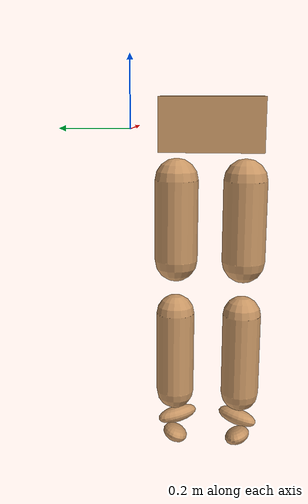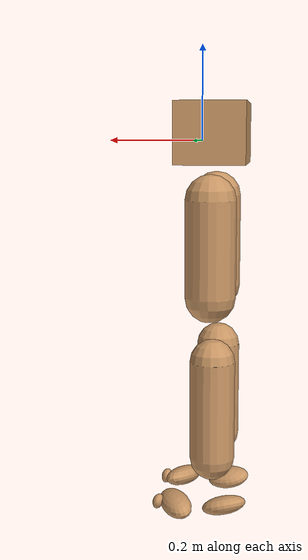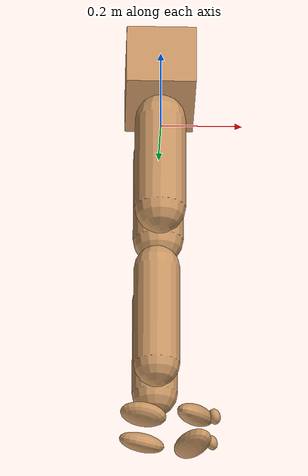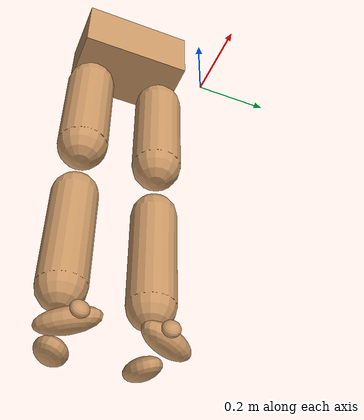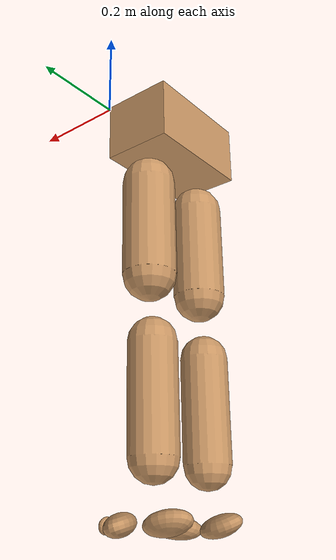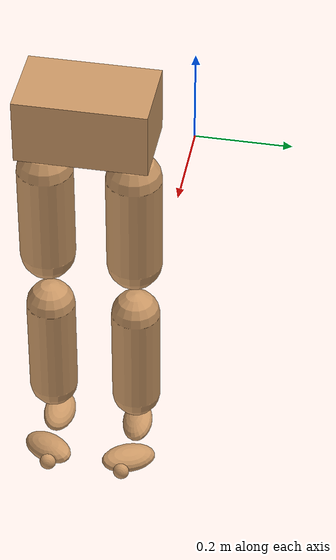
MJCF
<mujoco model="humanoid">
  <compiler coordinate="local" />
  <default>
    <joint damping="0.0" armature="0.01" stiffness="0.0" limited="true" />
    <geom conaffinity="1" condim="3" contype="7" margin="0.001" rgba="0.8 0.6 .4 1" />
  </default>
  <asset>
    <texture type="skybox" builtin="gradient" rgb1=".4 .5 .6" rgb2="0 0 0" width="100" height="100" />
    <texture builtin="flat" height="1278" mark="cross" markrgb="1 1 1" name="texgeom" random="0.01" rgb1="0.8 0.6 0.4" rgb2="0.8 0.6 0.4" type="cube" width="127" />
    <texture builtin="checker" height="100" name="texplane" rgb1="0 0 0" rgb2="0.8 0.8 0.8" type="2d" width="100" />
    <material name="MatPlane" reflectance="0.5" shininess="1" specular="1" texrepeat="60 60" texture="texplane" />
    <material name="geom" texture="texgeom" texuniform="true" />
  </asset>
  <worldbody>
    <light cutoff="100" diffuse="1 1 1" dir="-0 0 -1.3" directional="true" exponent="1" pos="0.000000 0.000000 1.300000" specular=".1 .1 .1" />
    <body name="Pelvis" pos="-0.001800 -0.223300 0.028200">
      <freejoint name="Pelvis" />
      <geom type="box" pos="-0.005500 -0.000000 -0.012100" size="0.083000 0.140000 0.072200" quat="1.0000 0.0000 0.0000 0.0000" density="1164.978473" />
      <body name="L_Hip" pos="-0.006550 0.095000 -0.091000">
        <joint name="L_Hip_x" type="hinge" pos="0.000000 0.000000 0.000000" axis="1 0 0" stiffness="250" damping="25" armature="0.02" range="-20.0000 45.0000" />
        <joint name="L_Hip_y" type="hinge" pos="0.000000 0.000000 0.000000" axis="0 1 0" stiffness="250" damping="25" armature="0.02" range="-30.0000 120.0000" />
        <joint name="L_Hip_z" type="hinge" pos="0.000000 0.000000 0.000000" axis="0 0 1" stiffness="250" damping="25" armature="0.02" range="-45.0000 45.0000" />
        <geom type="capsule" contype="1" conaffinity="1" density="4579.661072" fromto="0.000000 0.000000 -0.075000 0.000000 0.000000 -0.303000" size="0.060600" />
        <body name="L_Knee" pos="-0.006700 0.000000 -0.378900">
          <joint name="L_Knee_x" type="hinge" pos="0.000000 0.000000 0.000000" axis="1 0 0" stiffness="200" damping="20" armature="0.02" range="-10.0000 10.0000" />
          <joint name="L_Knee_y" type="hinge" pos="0.000000 0.000000 0.000000" axis="0 1 0" stiffness="200" damping="20" armature="0.02" range="-10.0000 150.0000" />
          <joint name="L_Knee_z" type="hinge" pos="0.000000 0.000000 0.000000" axis="0 0 1" stiffness="200" damping="20" armature="0.02" range="-15.0000 15.0000" />
          <geom type="capsule" contype="1" conaffinity="1" density="1624.381910" fromto="0.000000 0.000000 -0.079700 0.000000 0.000000 -0.318700" size="0.054100" />
          <body name="L_Ankle" pos="0.000000 0.000000 -0.398200">
            <joint name="L_Ankle_x" type="hinge" pos="0.000000 0.000000 0.000000" axis="1 0 0" stiffness="150" damping="15" armature="0.02" range="-10.0000 10.0000" />
            <joint name="L_Ankle_y" type="hinge" pos="0.000000 0.000000 0.000000" axis="0 1 0" stiffness="150" damping="15" armature="0.02" range="-45.0000 20.0000" />
            <joint name="L_Ankle_z" type="hinge" pos="0.000000 0.000000 0.000000" axis="0 0 1" stiffness="150" damping="15" armature="0.02" range="-10.0000 10.0000" />
            <geom type="ellipsoid" pos="-0.030100 -0.003700 -0.045000" size="0.054000 0.035400 0.022600" quat="0.9795 0.1640 0.0996 0.0505" density="1954.530354" />
            <geom type="ellipsoid" pos="0.089000 -0.002000 -0.045600" size="0.033800 0.063200 0.024000" quat="0.9572 -0.0878 0.1218 0.2470" density="1954.530354" />
            <body name="L_Toe" pos="0.123300 0.000000 -0.055000">
              <joint name="L_Toe_x" type="hinge" pos="0.000000 0.000000 0.000000" axis="1 0 0" stiffness="75" damping="8" armature="0.02" range="-10.0000 10.0000" />
              <joint name="L_Toe_y" type="hinge" pos="0.000000 0.000000 0.000000" axis="0 1 0" stiffness="75" damping="8" armature="0.02" range="-20.0000 20.0000" />
              <joint name="L_Toe_z" type="hinge" pos="0.000000 0.000000 0.000000" axis="0 0 1" stiffness="75" damping="8" armature="0.02" range="-5.0000 5.0000" />
              <geom type="ellipsoid" pos="0.010200 -0.010800 0.009400" size="0.018200 0.018600 0.013200" quat="0.7600 0.2624 0.5268 0.2759" density="9913.899509" />
            </body>
          </body>
        </body>
      </body>
      <body name="R_Hip" pos="-0.006550 -0.095000 -0.091000">
        <joint name="R_Hip_x" type="hinge" pos="0.000000 0.000000 0.000000" axis="1 0 0" stiffness="250" damping="25" armature="0.02" range="-20.0000 45.0000" />
        <joint name="R_Hip_y" type="hinge" pos="0.000000 0.000000 0.000000" axis="0 1 0" stiffness="250" damping="25" armature="0.02" range="-30.0000 120.0000" />
        <joint name="R_Hip_z" type="hinge" pos="0.000000 0.000000 0.000000" axis="0 0 1" stiffness="250" damping="25" armature="0.02" range="-15.0000 15.0000" />
        <geom type="capsule" contype="1" conaffinity="1" density="4579.661072" fromto="0.000000 0.000000 -0.075000 0.000000 0.000000 -0.303000" size="0.060600" />
        <body name="R_Knee" pos="-0.006700 0.000000 -0.378900">
          <joint name="R_Knee_x" type="hinge" pos="0.000000 0.000000 0.000000" axis="1 0 0" stiffness="200" damping="20" armature="0.02" range="-10.0000 10.0000" />
          <joint name="R_Knee_y" type="hinge" pos="0.000000 0.000000 0.000000" axis="0 1 0" stiffness="200" damping="20" armature="0.02" range="-10.0000 150.0000" />
          <joint name="R_Knee_z" type="hinge" pos="0.000000 0.000000 0.000000" axis="0 0 1" stiffness="200" damping="20" armature="0.02" range="-15.0000 15.0000" />
          <geom type="capsule" contype="1" conaffinity="1" density="1624.381910" fromto="0.000000 0.000000 -0.079700 0.000000 0.000000 -0.318700" size="0.054100" />
          <body name="R_Ankle" pos="0.000000 0.000000 -0.398200">
            <joint name="R_Ankle_x" type="hinge" pos="0.000000 0.000000 0.000000" axis="1 0 0" stiffness="150" damping="15" armature="0.02" range="-25.0000 25.0000" />
            <joint name="R_Ankle_y" type="hinge" pos="0.000000 0.000000 0.000000" axis="0 1 0" stiffness="150" damping="15" armature="0.02" range="-45.0000 20.0000" />
            <joint name="R_Ankle_z" type="hinge" pos="0.000000 0.000000 0.000000" axis="0 0 1" stiffness="150" damping="15" armature="0.02" range="-10.0000 10.0000" />
            <geom type="ellipsoid" pos="-0.030100 0.003700 -0.045000" size="0.054000 0.035400 0.022600" quat="0.9795 -0.1640 0.0996 -0.0505" density="1954.530354" />
            <geom type="ellipsoid" pos="0.089000 0.002000 -0.045600" size="0.033800 0.063200 0.024000" quat="0.9572 0.0878 0.1218 -0.2470" density="1954.530354" />
            <body name="R_Toe" pos="0.123300 0.000000 -0.055000">
              <joint name="R_Toe_x" type="hinge" pos="0.000000 0.000000 0.000000" axis="1 0 0" stiffness="75" damping="8" armature="0.02" range="-10.0000 10.0000" />
              <joint name="R_Toe_y" type="hinge" pos="0.000000 0.000000 0.000000" axis="0 1 0" stiffness="75" damping="8" armature="0.02" range="-20.0000 20.0000" />
              <joint name="R_Toe_z" type="hinge" pos="0.000000 0.000000 0.000000" axis="0 0 1" stiffness="75" damping="8" armature="0.02" range="-5.0000 5.0000" />
              <geom type="ellipsoid" pos="0.010200 0.010800 0.009400" size="0.018200 0.018600 0.013200" quat="0.7600 -0.2624 0.5268 -0.2759" density="9913.899509" />
            </body>
          </body>
        </body>
      </body>
    </body>
  </worldbody>
  <actuator>
    <motor name="L_Hip_x" joint="L_Hip_x" gear="500" />
    <motor name="L_Hip_y" joint="L_Hip_y" gear="500" />
    <motor name="L_Hip_z" joint="L_Hip_z" gear="500" />
    <motor name="L_Knee_x" joint="L_Knee_x" gear="500" />
    <motor name="L_Knee_y" joint="L_Knee_y" gear="500" />
    <motor name="L_Knee_z" joint="L_Knee_z" gear="500" />
    <motor name="L_Ankle_x" joint="L_Ankle_x" gear="500" />
    <motor name="L_Ankle_y" joint="L_Ankle_y" gear="500" />
    <motor name="L_Ankle_z" joint="L_Ankle_z" gear="500" />
    <motor name="L_Toe_x" joint="L_Toe_x" gear="500" />
    <motor name="L_Toe_y" joint="L_Toe_y" gear="500" />
    <motor name="L_Toe_z" joint="L_Toe_z" gear="500" />
    <motor name="R_Hip_x" joint="R_Hip_x" gear="500" />
    <motor name="R_Hip_y" joint="R_Hip_y" gear="500" />
    <motor name="R_Hip_z" joint="R_Hip_z" gear="500" />
    <motor name="R_Knee_x" joint="R_Knee_x" gear="500" />
    <motor name="R_Knee_y" joint="R_Knee_y" gear="500" />
    <motor name="R_Knee_z" joint="R_Knee_z" gear="500" />
    <motor name="R_Ankle_x" joint="R_Ankle_x" gear="500" />
    <motor name="R_Ankle_y" joint="R_Ankle_y" gear="500" />
    <motor name="R_Ankle_z" joint="R_Ankle_z" gear="500" />
    <motor name="R_Toe_x" joint="R_Toe_x" gear="500" />
    <motor name="R_Toe_y" joint="R_Toe_y" gear="500" />
    <motor name="R_Toe_z" joint="R_Toe_z" gear="500" />
  </actuator>
</mujoco>
